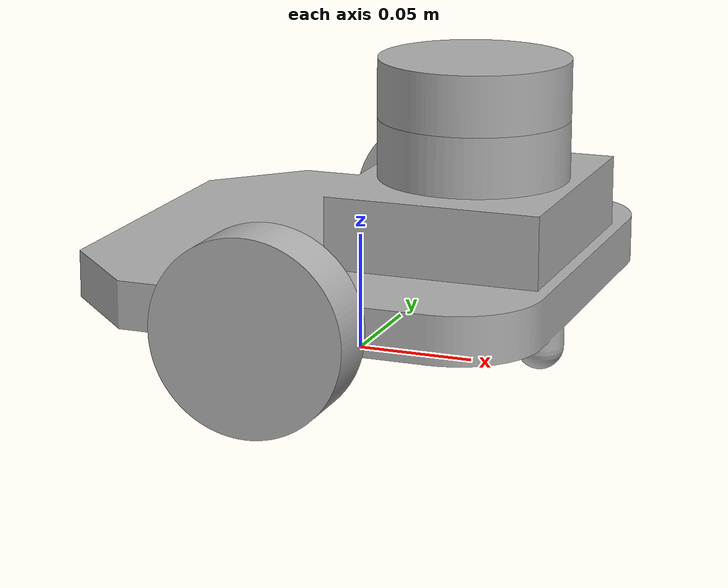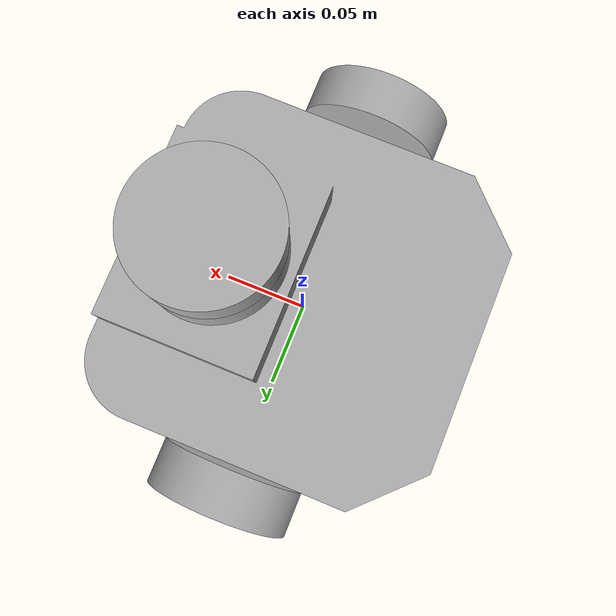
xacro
<?xml version="1.0" ?>
<robot name="my_robot_1100915" xmlns:xacro="http://www.ros.org/wiki/xacro">

<xacro:include filename="$(find my_robot_1100915_description)/urdf/materials.xacro" />
<xacro:include filename="$(find my_robot_1100915_description)/urdf/my_robot_1100915.trans" />
<xacro:include filename="$(find my_robot_1100915_description)/urdf/my_robot_1100915.gazebo" />
<link name="base_link">
  <inertial>
    <origin xyz="0.018608207203343066 3.020565100246067e-17 0.051316512184761354" rpy="0 0 0"/>
    <mass value="9.454566509208322"/>
    <inertia ixx="0.024935" iyy="0.029922" izz="0.047913" ixy="0.0" iyz="-0.0" ixz="-0.003497"/>
  </inertial>
  <visual>
    <origin xyz="0 0 0" rpy="0 0 0"/>
    <geometry>
      <mesh filename="package://my_robot_1100915_description/meshes/base_link.stl" scale="0.001 0.001 0.001"/>
    </geometry>
    <material name="silver"/>
  </visual>
  <collision>
    <origin xyz="0 0 0" rpy="0 0 0"/>
    <geometry>
      <mesh filename="package://my_robot_1100915_description/meshes/base_link.stl" scale="0.001 0.001 0.001"/>
    </geometry>
  </collision>
</link>

<link name="left_wheel_1">
  <inertial>
    <origin xyz="-9.04691109394067e-18 0.012500000000000011 6.938893903907228e-18" rpy="0 0 0"/>
    <mass value="0.986460093227195"/>
    <inertia ixx="0.000446" iyy="0.000789" izz="0.000446" ixy="-0.0" iyz="0.0" ixz="-0.0"/>
  </inertial>
  <visual>
    <origin xyz="-0.0 -0.1 -0.04" rpy="0 0 0"/>
    <geometry>
      <mesh filename="package://my_robot_1100915_description/meshes/left_wheel_1.stl" scale="0.001 0.001 0.001"/>
    </geometry>
    <material name="silver"/>
  </visual>
  <collision>
    <origin xyz="-0.0 -0.1 -0.04" rpy="0 0 0"/>
    <geometry>
      <mesh filename="package://my_robot_1100915_description/meshes/left_wheel_1.stl" scale="0.001 0.001 0.001"/>
    </geometry>
  </collision>
</link>

<link name="right_wheel_1">
  <inertial>
    <origin xyz="0.0 -0.012499999999999997 6.938893903907228e-18" rpy="0 0 0"/>
    <mass value="0.986460093227195"/>
    <inertia ixx="0.000446" iyy="0.000789" izz="0.000446" ixy="0.0" iyz="-0.0" ixz="0.0"/>
  </inertial>
  <visual>
    <origin xyz="-0.0 0.1 -0.04" rpy="0 0 0"/>
    <geometry>
      <mesh filename="package://my_robot_1100915_description/meshes/right_wheel_1.stl" scale="0.001 0.001 0.001"/>
    </geometry>
    <material name="silver"/>
  </visual>
  <collision>
    <origin xyz="-0.0 0.1 -0.04" rpy="0 0 0"/>
    <geometry>
      <mesh filename="package://my_robot_1100915_description/meshes/right_wheel_1.stl" scale="0.001 0.001 0.001"/>
    </geometry>
  </collision>
</link>

<link name="lidar_1">
  <inertial>
    <origin xyz="6.938893903907228e-18 9.046911093940672e-18 0.012499999999999997" rpy="0 0 0"/>
    <mass value="0.9864600932271947"/>
    <inertia ixx="0.000446" iyy="0.000446" izz="0.000789" ixy="0.0" iyz="-0.0" ixz="0.0"/>
  </inertial>
  <visual>
    <origin xyz="-0.05 -0.0 -0.105" rpy="0 0 0"/>
    <geometry>
      <mesh filename="package://my_robot_1100915_description/meshes/lidar_1.stl" scale="0.001 0.001 0.001"/>
    </geometry>
    <material name="silver"/>
  </visual>
  <collision>
    <origin xyz="-0.05 -0.0 -0.105" rpy="0 0 0"/>
    <geometry>
      <mesh filename="package://my_robot_1100915_description/meshes/lidar_1.stl" scale="0.001 0.001 0.001"/>
    </geometry>
  </collision>
</link>

<joint name="Revolute_1" type="continuous">
  <origin xyz="0.0 0.1 0.04" rpy="0 0 0"/>
  <parent link="base_link"/>
  <child link="left_wheel_1"/>
  <axis xyz="0.0 1.0 0.0"/>
</joint>

<joint name="Revolute_2" type="continuous">
  <origin xyz="0.0 -0.1 0.04" rpy="0 0 0"/>
  <parent link="base_link"/>
  <child link="right_wheel_1"/>
  <axis xyz="0.0 1.0 0.0"/>
</joint>

<joint name="Rigid_3" type="fixed">
  <origin xyz="0.05 0.0 0.105" rpy="0 0 0"/>
  <parent link="base_link"/>
  <child link="lidar_1"/>
</joint>

</robot>

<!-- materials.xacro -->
<robot name="my_robot_1100915" xmlns:xacro="http://www.ros.org/wiki/xacro" >

<material name="silver">
  <color rgba="0.700 0.700 0.700 1.000"/>
</material>

</robot>

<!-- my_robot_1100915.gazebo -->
<robot name="my_robot_1100915" xmlns:xacro="http://www.ros.org/wiki/xacro" >

<xacro:property name="body_color" value="Gazebo/Silver" />

<gazebo>
  <plugin name="control" filename="libgazebo_ros_control.so"/>
</gazebo>
<gazebo reference="base_link">
  <material>${body_color}</material>
  <mu1>0.1</mu1>
  <mu2>0.1</mu2>
  <selfCollide>true</selfCollide>
  <gravity>true</gravity>
</gazebo>

<gazebo reference="left_wheel_1">
  <material>${body_color}</material>
  <mu1>1500</mu1>
  <mu2>1500</mu2>
  <selfCollide>true</selfCollide>
</gazebo>

<gazebo reference="right_wheel_1">
  <material>${body_color}</material>
  <mu1>1500</mu1>
  <mu2>1500</mu2>
  <selfCollide>true</selfCollide>
</gazebo>

<gazebo reference="lidar_1">
  <material>${body_color}</material>
  <mu1>0.2</mu1>
  <mu2>0.2</mu2>
  <selfCollide>true</selfCollide>
</gazebo>

<gazebo>
  <plugin name="differential_drive_controller" filename="libgazebo_ros_diff_drive.so">

    <!-- Plugin update rate in Hz -->
    <updateRate>100</updateRate>

    <!-- Name of left joint, defaults to `left_joint` -->
    <leftJoint>Revolute_1</leftJoint>

    <!-- Name of right joint, defaults to `right_joint` -->
    <rightJoint>Revolute_2</rightJoint>

    <!-- The distance from the center of one wheel to the other, in meters, defaults to 0.34 m -->
    <wheelSeparation>0.2</wheelSeparation>

    <!-- Diameter of the wheels, in meters, defaults to 0.15 m -->
    <wheelDiameter>0.08</wheelDiameter>

    <!-- Wheel acceleration, in rad/s^2, defaults to 0.0 rad/s^2 -->
    <wheelAcceleration>1.0</wheelAcceleration>

    <!-- Maximum torque which the wheels can produce, in Nm, defaults to 5 Nm -->
    <wheelTorque>50</wheelTorque>

    <!-- Topic to receive geometry_msgs/Twist message commands, defaults to `cmd_vel` -->
    <commandTopic>cmd_vel</commandTopic>

    <!-- Topic to publish nav_msgs/Odometry messages, defaults to `odom` -->
    <odometryTopic>odom</odometryTopic>

    <!-- Odometry frame, defaults to `odom` -->
    <odometryFrame>odom</odometryFrame>

    <!-- Robot frame to calculate odometry from, defaults to `base_footprint` -->
    <robotBaseFrame>base_link</robotBaseFrame>

    <!-- Odometry source, 0 for ENCODER, 1 for WORLD, defaults to WORLD -->
    <odometrySource>1</odometrySource>

    <!-- Set to true to publish transforms for the wheel links, defaults to false -->
    <publishWheelTF>true</publishWheelTF>

    <!-- Set to true to publish transforms for the odometry, defaults to true -->
    <publishOdom>true</publishOdom>

    <!-- Set to true to publish sensor_msgs/JointState on /joint_states for the wheel joints, defaults to false -->
    <publishWheelJointState>true</publishWheelJointState>

    <!-- Set to true to swap right and left wheels, defaults to true -->
    <legacyMode>false</legacyMode>
  </plugin>
</gazebo>

<!-- hokuyo -->
<gazebo reference="lidar_1">
  <sensor type="ray" name="head_hokuyo_sensor">
    <pose>0 0 0 0 0 0</pose>
    <visualize>true</visualize>
    <update_rate>40</update_rate>
    <ray>
      <scan>
        <horizontal>
          <samples>720</samples>
          <resolution>1</resolution>
          <min_angle>-1.570796</min_angle>
          <max_angle>1.570796</max_angle>
        </horizontal>
      </scan>
      <range>
        <min>0.08</min>
        <max>2.0</max>
        <resolution>0.01</resolution>
      </range>
      <noise>
        <type>gaussian</type>
        <mean>0.0</mean>
        <stddev>0.01</stddev>
      </noise>
    </ray>
    <plugin name="gazebo_ros_head_hokuyo_controller" filename="libgazebo_ros_laser.so">
      <topicName>/scan</topicName>
      <frameName>lidar_1</frameName>
    </plugin>
  </sensor>
</gazebo>

</robot>
